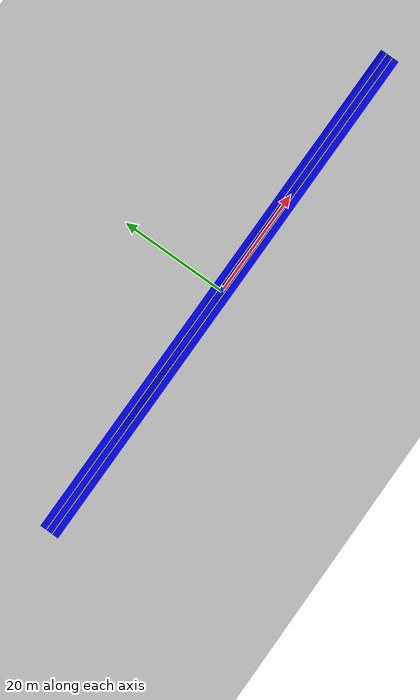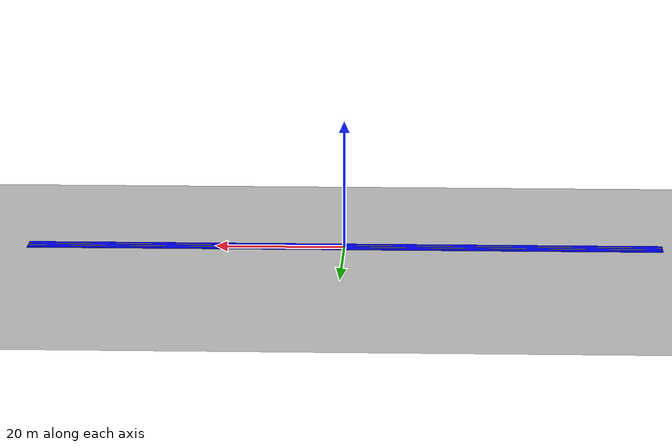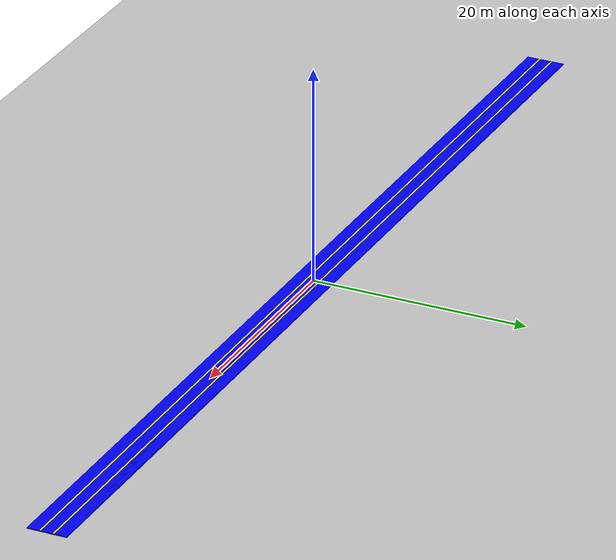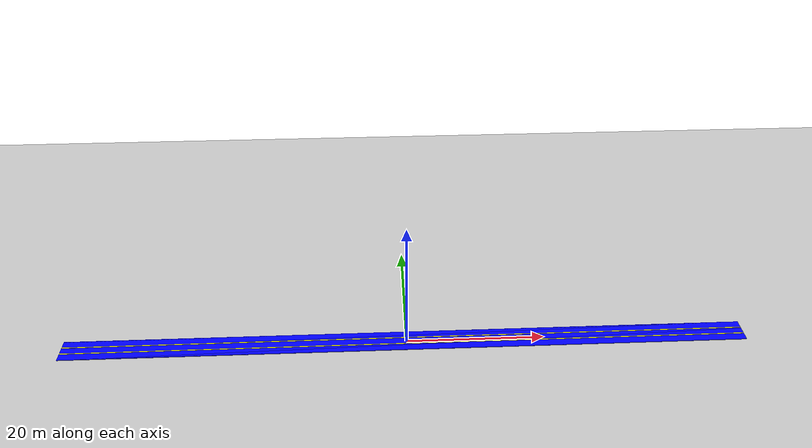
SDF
<sdf version="1.7">
 <world name="default">
  <light name="sun" type="directional">
   <pose>0 0 10 0 -0 0</pose>
   <diffuse>0.8 0.8 0.8 1</diffuse>
   <specular>0.2 0.2 0.2 1</specular>
   <attenuation>
    <range>1000</range>
    <constant>0.9</constant>
    <linear>0.01</linear>
    <quadratic>0.001</quadratic>
   </attenuation>
   <direction>-0.5 0.1 -0.9</direction>
   <spot><inner_angle>0</inner_angle><outer_angle>0</outer_angle><falloff>0</falloff></spot>
  </light>
  <model name="ground_plane">
   <static>1</static>
   <link name="link">
    <collision name="collision">
     <geometry><plane><normal>0 0 1</normal><size>100 100</size></plane></geometry>
     <surface><friction><ode><mu>100</mu><mu2>50</mu2></ode></friction></surface>
    </collision>
    <visual name="visual">
     <cast_shadows>0</cast_shadows>
     <geometry><plane><normal>0 0 1</normal><size>100 100</size></plane></geometry>
     <material>
      <script><uri>file://media/materials/scripts/gazebo.material</uri><name>Gazebo/Grey</name></script>
     </material>
    </visual>
   </link>
  </model>
  <gravity>0 0 -9.8</gravity>
  <magnetic_field>6e-06 2.3e-05 -4.2e-05</magnetic_field>
  <atmosphere type="adiabatic"/>
  <physics type="ode">
   <max_step_size>0.001</max_step_size>
   <real_time_factor>1</real_time_factor>
   <real_time_update_rate>1000</real_time_update_rate>
  </physics>
  <scene><ambient>0.4 0.4 0.4 1</ambient><background>0.7 0.7 0.7 1</background><shadows>1</shadows></scene>
  <spherical_coordinates>
   <surface_model>EARTH_WGS84</surface_model>
   <latitude_deg>0</latitude_deg>
   <longitude_deg>0</longitude_deg>
   <elevation>0</elevation>
   <heading_deg>0</heading_deg>
  </spherical_coordinates>
  <model name="straightaway">
   <pose>-0.047548 0.032084 0.049986 0 -0 0</pose>
   <link name="link">
    <inertial>
     <mass>1000</mass>
     <inertia><ixx>750.83</ixx><ixy>0</ixy><ixz>0</ixz><iyy>833333</iyy><iyz>0</iyz><izz>833250</izz></inertia>
    </inertial>
    <collision name="left_lane_collision">
     <pose>0 1.2 0 0 -0 0</pose>
     <geometry><box><size>99 1.2 0.1</size></box></geometry>
     <surface><friction><ode><mu>0.8</mu><mu2>0.8</mu2></ode></friction></surface>
    </collision>
    <visual name="left_lane">
     <pose>0 1.2 0 0 -0 0</pose>
     <geometry><box><size>99 1.2 0.1</size></box></geometry>
     <material><ambient>0 0 1 1</ambient></material>
    </visual>
    <collision name="center_left_lane_collision">
     <geometry><box><size>99 1.2 0.1</size></box></geometry>
     <surface><friction><ode><mu>0.8</mu><mu2>0.8</mu2></ode></friction></surface>
    </collision>
    <visual name="center_left_lane">
     <geometry><box><size>99 1.2 0.1</size></box></geometry>
     <material><ambient>0 0 1 1</ambient></material>
    </visual>
    <collision name="center_right_lane_collision">
     <pose>0 -1.2 0 0 -0 0</pose>
     <geometry><box><size>99 1.2 0.1</size></box></geometry>
     <surface><friction><ode><mu>0.8</mu><mu2>0.8</mu2></ode></friction></surface>
    </collision>
    <visual name="center_right_lane">
     <pose>0 -1.2 0 0 -0 0</pose>
     <geometry><box><size>99 1.2 0.1</size></box></geometry>
     <material><ambient>0 0 1 1</ambient></material>
    </visual>
    <collision name="straightaway_collision">
     <geometry><box><size>99 3.6 0.1</size></box></geometry>
     <surface><friction><ode><mu>0.8</mu><mu2>0.8</mu2></ode></friction></surface>
    </collision>
    <visual name="straightaway_surface">
     <geometry><box><size>99 3.6 0.1</size></box></geometry>
     <material><ambient>0 0 1 1</ambient></material>
    </visual>
    <collision name="first_divider_collision">
     <pose>0 0.6 0.01 0 -0 0</pose>
     <geometry><box><size>99 0.15 0.1</size></box></geometry>
     <surface><friction><ode><mu>0.8</mu><mu2>0.8</mu2></ode></friction></surface>
    </collision>
    <visual name="first_divider">
     <pose>0 0.6 0.01 0 -0 0</pose>
     <geometry><box><size>99 0.15 0.1</size></box></geometry>
     <material><ambient>1 1 0 1</ambient></material>
    </visual>
    <collision name="second_divider_collision">
     <pose>0 -0.6 0.01 0 -0 0</pose>
     <geometry><box><size>99 0.15 0.1</size></box></geometry>
     <surface><friction><ode><mu>0.8</mu><mu2>0.8</mu2></ode></friction></surface>
    </collision>
    <visual name="second_divider">
     <pose>0 -0.6 0.01 0 -0 0</pose>
     <geometry><box><size>99 0.15 0.1</size></box></geometry>
     <material><ambient>1 1 0 1</ambient></material>
    </visual>
   </link>
  </model>
 </world>
</sdf>
